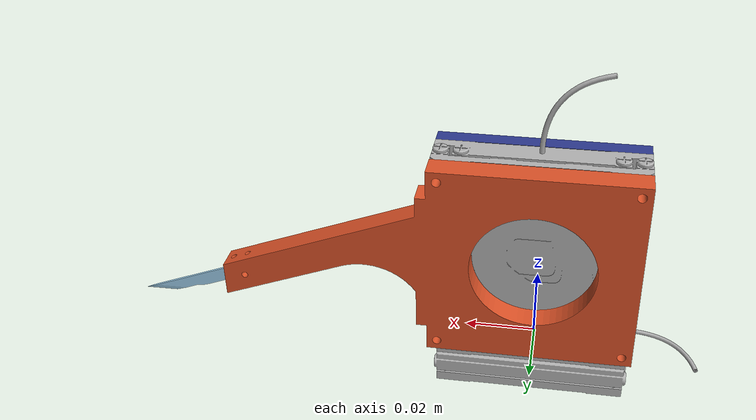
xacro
<?xml version="1.0"?>
<robot xmlns:xacro="http://www.ros.org/wiki/xacro" name="micro_resector">

    <xacro:arg name="hardware_interface" default="PositionJointInterface"/>
    <xacro:arg name="prefix" default="x"/>
    <xacro:arg name="virtual_joints" default="false"/>
    <xacro:arg name="camera" default="true"/>

    <link name="base_link"/>

    <xacro:include filename="$(find micro_resector_description)/urdf/materials.xacro" />

    <xacro:include filename="$(find micro_resector_description)/urdf/scalpel_system.xacro" />
    <xacro:include filename="$(find micro_resector_description)/urdf/tweezer_system.xacro" />

        <joint name="scalpel_to_base" type="fixed">
            <parent link="base_link"/>
            <child link="scalpel_system_base_link"/>
            <origin xyz="0 0 0" rpy="0 0.0 0"/>
        </joint>

    <xacro:scalpel_system hardware_interface="$(arg hardware_interface)" name="scalpel">
    </xacro:scalpel_system>

</robot>

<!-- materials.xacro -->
<robot name="materials" xmlns:xacro="http://www.ros.org/wiki/xacro" >

  <material name="silver">
    <color rgba="0.700 0.700 0.700 1.000"/>
  </material>

  <material name="black">
    <color rgba="0.0 0.0 0.0 1.0"/>
  </material>

  <material name="blue">
    <color rgba="0.0 0.0 0.8 1.0"/>
  </material>

  <material name="green">
    <color rgba="0.0 0.8 0.0 1.0"/>
  </material>

  <material name="grey">
    <color rgba="0.4 0.4 0.4 1.0"/>
  </material>

  <material name="orange">
    <color rgba="${255/255} ${108/255} ${10/255} 1.0"/>
  </material>

  <material name="brown">
    <color rgba="${222/255} ${207/255} ${195/255} 1.0"/>
  </material>

  <material name="red">
    <color rgba="0.8 0.0 0.0 1.0"/>
  </material>

  <material name="white">
    <color rgba="1.0 1.0 1.0 1.0"/>
  </material>

</robot>

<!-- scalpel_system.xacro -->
<robot xmlns:xacro="http://www.ros.org/wiki/xacro">

    <xacro:include filename="$(find micro_resector_description)/urdf/stage/linear_stage.xacro"/>
    <xacro:include filename="$(find micro_resector_description)/urdf/link/l_bracket.xacro"/>
    <xacro:include filename="$(find micro_resector_description)/urdf/tools/scalpel.xacro"/>
    <xacro:include filename="$(find micro_resector_description)/urdf/tools/tool_holder.xacro"/>

    <xacro:macro name="scalpel_system" params="hardware_interface name">

        <link name="${name}_system_base_link"/>

        <joint name="${name}_x_linear_stage_world_joint" type="fixed">
            <parent link="${name}_system_base_link"/>
            <child link="${name}_x_lin_base_link"/>
            <origin xyz="0 0 0" rpy="0 0 0"/>
        </joint>

        <xacro:linear_stage hardware_interface="${hardware_interface}" prefix="${name}_x">
        </xacro:linear_stage>

        <joint name="${name}_y_linear_stage_joint" type="fixed">
            <parent link="${name}_x_lin_stage_link"/>
            <child link="${name}_y_lin_base_link"/>
            <origin xyz="0 0 0" rpy="0 0 ${pi/2}"/>
        </joint>

        <xacro:linear_stage hardware_interface="${hardware_interface}" prefix="${name}_y">
        </xacro:linear_stage>

        <joint name="${name}_l_bracket_joint" type="fixed">
            <parent link="${name}_y_lin_stage_link"/>
            <child link="${name}_z_bracket_base_link"/>
            <origin xyz="0.0 0.0 0.00" rpy="0.0 0 ${pi/2}"/>
        </joint>

        <xacro:l_bracket prefix="${name}_z">
        </xacro:l_bracket>

        <joint name="${name}_z_linear_stage_joint" type="fixed">
            <parent link="${name}_z_bracket_side_link"/>
            <child link="${name}_z_lin_base_link"/>
            <origin xyz="0.0 0.0 0.00" rpy="0 0 -${pi/2}"/>
        </joint>

        <xacro:linear_stage hardware_interface="${hardware_interface}" prefix="${name}_z">
        </xacro:linear_stage>

        <joint name="${name}_tool_holder_joint" type="fixed">-->
            <parent link="${name}_z_lin_stage_link"/>
            <child link="${name}_tool_holder_link"/>
            <origin xyz="0 0 0" rpy="0 0 ${pi/2}"/>
        </joint>

        <xacro:tool_holder name="${name}">
        </xacro:tool_holder>

        <joint name="${name}_attachment_joint" type="fixed">
            <parent link="${name}_tool_attachment_link"/>
            <child link="scalpel_z_scalpel_base_link"/>
            <origin xyz="0.0 0.0 0.00" rpy="0.0 0.0 0.0"/>
        </joint>

        <xacro:scalpel prefix="scalpel_z">
        </xacro:scalpel>
    </xacro:macro>

</robot>

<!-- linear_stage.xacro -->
<robot name="linear_stage" xmlns:xacro="http://www.ros.org/wiki/xacro">

<xacro:include filename="$(find micro_resector_description)/urdf/stage/stage.trans" />
<xacro:include filename="$(find micro_resector_description)/urdf/stage/stage.gazebo" />

<xacro:macro name="linear_stage" params="prefix hardware_interface">
  <link name="${prefix}_lin_base_link">
    <inertial>
      <origin rpy="0 0 0" xyz="0 0 0"/>
      <mass value="0.058579061972031825"/>
      <inertia ixx="1.2e-05" ixy="-0.0" ixz="-0.0" iyy="2.4e-05" iyz="0.0" izz="1.2e-05"/>
    </inertial>
    <visual>
      <origin rpy="0 0 0" xyz="0 0 0"/>
      <geometry>
        <mesh filename="package://micro_resector_description/meshes/stage/lin_base_link.dae"/>
      </geometry>
      <material name="silver"/>
    </visual>
    <collision>
      <origin rpy="0 0 0" xyz="0 0 0"/>
      <geometry>
        <mesh filename="package://micro_resector_description/meshes/stage/lin_base_link.stl"/>
      </geometry>
    </collision>
  </link>

  <link name="${prefix}_lin_stage_link">
    <inertial>
      <origin rpy="0 0 0" xyz="0 0 0"/>
      <mass value="0.11339718225370693"/>
      <inertia ixx="2.3e-05" ixy="0.0" ixz="0.0" iyy="4.6e-05" iyz="0.0" izz="2.3e-05"/>
    </inertial>
    <visual>
      <origin rpy="0 0 0" xyz="0 0 0"/>
      <geometry>
        <mesh filename="package://micro_resector_description/meshes/stage/lin_stage_link.dae"/>
      </geometry>
      <material name="silver"/>
    </visual>
    <collision>
      <origin rpy="0 0 0" xyz="0 0 0"/>
      <geometry>
        <mesh filename="package://micro_resector_description/meshes/stage/lin_stage_link.stl"/>
      </geometry>
    </collision>
  </link>

  <joint name="${prefix}_lin_joint" type="prismatic">
    <origin rpy="0 0 0" xyz="0 0 0.00965"/>
    <parent link="${prefix}_lin_base_link"/>
    <child link="${prefix}_lin_stage_link"/>
    <axis xyz="1 0.0 0.0"/>
    <limit effort="100" lower="-0.015" upper="0.015" velocity="0.0045"/>
  </joint>

  <xacro:stage_gazebo prefix="${prefix}" type="lin"/>
  <xacro:stage_transmission prefix="${prefix}" hardware_interface="${hardware_interface}" type="lin"/>

</xacro:macro>

</robot>

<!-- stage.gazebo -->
<robot xmlns:xacro="http://www.ros.org/wiki/xacro" >

<xacro:property name="body_color" value="Gazebo/Silver" />

<xacro:macro name="stage_gazebo" params="prefix type">
  <gazebo reference="$(arg prefix)_${type}_base_link">
    <material>${body_color}</material>
    <mu1>0.2</mu1>
    <mu2>0.2</mu2>
    <selfCollide>true</selfCollide>
    <gravity>true</gravity>
  </gazebo>

  <gazebo reference="$(arg prefix)_${type}_stage_link">
    <material>${body_color}</material>
    <mu1>0.2</mu1>
    <mu2>0.2</mu2>
    <selfCollide>true</selfCollide>
  </gazebo>
</xacro:macro>
</robot>

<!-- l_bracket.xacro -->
<robot name="l_bracket" xmlns:xacro="http://www.ros.org/wiki/xacro">

<xacro:macro name="l_bracket" params="prefix">
  <link name="${prefix}_bracket_base_link">
    <inertial>
      <origin rpy="0 0 0" xyz="0.0 0.0075 0.0"/>
      <mass value="0.058579061972031825"/>
      <inertia ixx="1.2e-05" ixy="-0.0" ixz="-0.0" iyy="2.4e-05" iyz="0.0" izz="1.2e-05"/>
    </inertial>
    <visual>
      <origin rpy="0 0 0" xyz="0 0 0"/>
      <geometry>
        <mesh filename="package://micro_resector_description/meshes/link/l_bracket.dae"/>
      </geometry>
    </visual>
    <collision>
      <origin rpy="0 0 0" xyz="0 0 0"/>
      <geometry>
        <mesh filename="package://micro_resector_description/meshes/link/l_bracket.stl"/>
      </geometry>
    </collision>
  </link>

  <link name="${prefix}_bracket_side_link"/>

  <joint name="${prefix}_bracket_joint" type="fixed">
    <origin rpy="${pi/2} 0 0" xyz="0.0 -0.025 0.03"/>
    <parent link="${prefix}_bracket_base_link"/>
    <child link="${prefix}_bracket_side_link"/>
  </joint>
</xacro:macro>

</robot>

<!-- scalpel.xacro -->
<robot name="scalpel" xmlns:xacro="http://www.ros.org/wiki/xacro">

<xacro:macro name="scalpel" params="prefix">
  <link name="${prefix}_scalpel_base_link">
    <inertial>
      <origin rpy="0 0 0" xyz="0.0 0.0 0.0"/>
      <mass value="0.058579061972031825"/>
      <inertia ixx="1.2e-05" ixy="-0.0" ixz="-0.0" iyy="2.4e-05" iyz="0.0" izz="1.2e-05"/>
    </inertial>
    <visual>
      <origin rpy="0 0 0" xyz="0 0 0"/>
      <geometry>
        <mesh filename="package://micro_resector_description/meshes/tools/blade_sm65.dae"/>
      </geometry>
    </visual>
    <collision>
      <origin rpy="0 0 0" xyz="0 0 0"/>
      <geometry>
        <mesh filename="package://micro_resector_description/meshes/tools/blade_sm65.dae"/>
      </geometry>
    </collision>
  </link>

  <link name="${prefix}_scalpel_blade_base_link"/>

  <joint name="${prefix}_scalpel_joint" type="fixed">
    <origin rpy="${-pi/2} 0 ${20.487 * pi/180}" xyz="0.024506 -0.00115 0"/>
    <parent link="${prefix}_scalpel_base_link"/>
    <child link="${prefix}_scalpel_blade_base_link"/>
  </joint>

  <link name="${prefix}_scalpel_blade_tip_link"/>

  <joint name="${prefix}_scalpel_blade_joint" type="fixed">
    <origin rpy="0 0 0" xyz="0.008 0 0"/>
    <parent link="${prefix}_scalpel_blade_base_link"/>
    <child link="${prefix}_scalpel_blade_tip_link"/>
  </joint>
</xacro:macro>

</robot>

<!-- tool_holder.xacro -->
<robot xmlns:xacro="http://www.ros.org/wiki/xacro" name="tool_holder">
    <xacro:macro name="tool_holder" params="name">
        <xacro:arg name="name" default="tool"/>

        <link name="${name}_tool_holder_link">
            <inertial>
              <origin rpy="0 0 0" xyz="0.0 0.0075 0.0"/>
              <mass value="0.058579061972031825"/>
              <inertia ixx="1.2e-05" ixy="-0.0" ixz="-0.0" iyy="2.4e-05" iyz="0.0" izz="1.2e-05"/>
            </inertial>
            <visual>
              <origin rpy="0 0 0" xyz="0 0 0.003"/>
              <geometry>
                <mesh filename="package://micro_resector_description/meshes/tools/tool_holder.dae"/>
              </geometry>
            </visual>
            <collision>
              <origin rpy="0 0 0" xyz="0 0 0.003"/>
              <geometry>
                <mesh filename="package://micro_resector_description/meshes/tools/tool_holder.stl"/>
              </geometry>
            </collision>
        </link>

        <joint name="${name}_joint" type="fixed">
            <parent link="${name}_tool_holder_link"/>
            <child link="${name}_tool_attachment_link"/>
            <origin xyz="-0.067062 -0.006575 0.003" rpy="${pi} 0 ${-159.0 * pi/180}"/>
        </joint>

        <link name="${name}_tool_attachment_link"/>
    </xacro:macro>
</robot>
